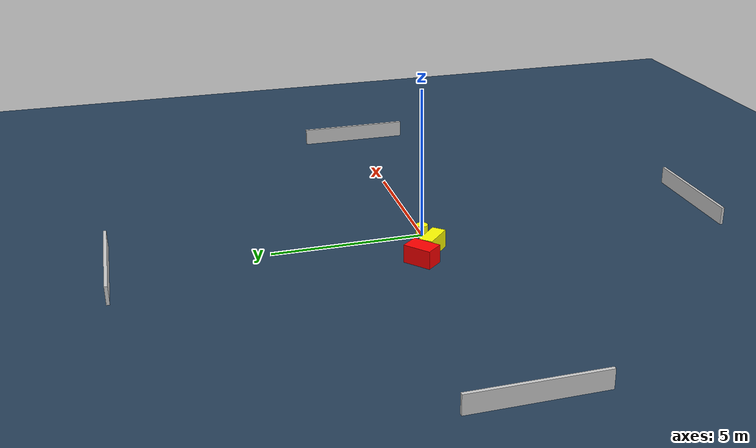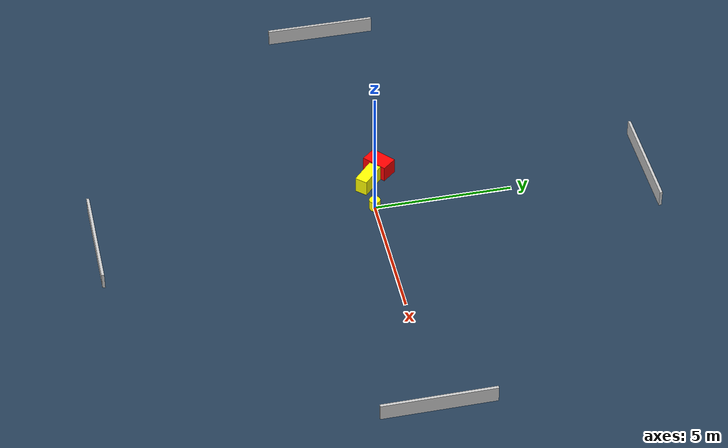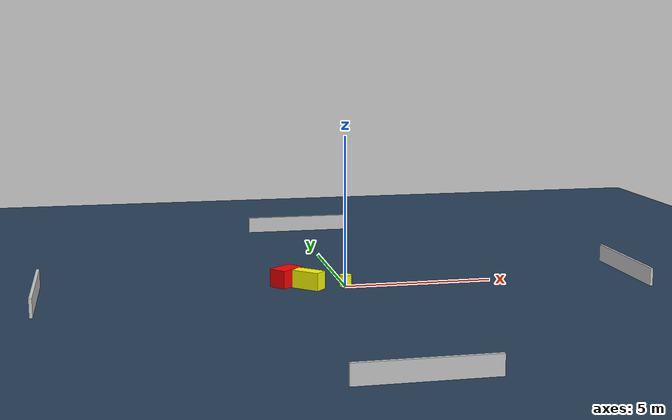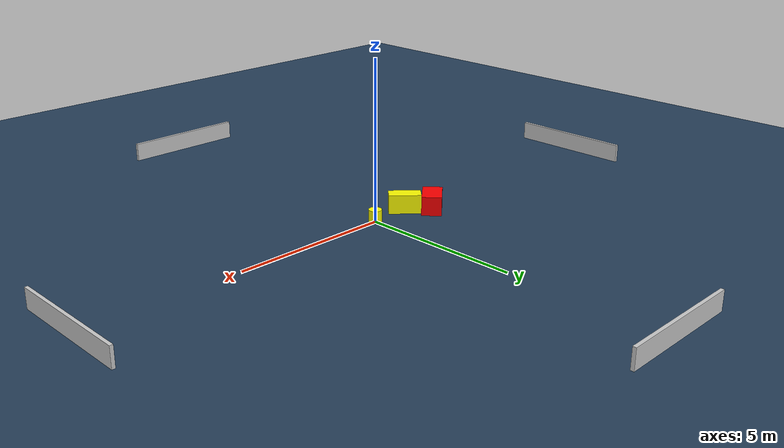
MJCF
<?xml version="1.0" ?>
<mujoco model="generated_environment">
  <option timestep="0.01" integrator="RK4" cone="elliptic"/>
  <default>
    <geom density="1"/>
  </default>
  <asset>
    <texture builtin="gradient" height="3072" name="skybox" rgb1="0.3 0.5 0.7" rgb2="0 0 0" type="skybox" width="512"/>
    <texture builtin="checker" height="300" name="groundplane" rgb1="0.2 0.3 0.4" rgb2="0.1 0.2 0.3" type="2d" width="300"/>
    <material name="groundplane" reflectance="0.2" texrepeat="5 5" texture="groundplane"/>
  </asset>
  <worldbody>
    <light dir="0 0 -1" directional="true" pos="0 0 1.5"/>
    <geom condim="3" friction="0.5 0.005 0.001" material="groundplane" name="floor" pos="0 0 0" size="0 0 0.05" type="plane"/>
    <body name="walls">
      <geom name="wall_1" condim="4" pos="-10.0 0.0 0.3" rgba="0.800000011920929 0.800000011920929 0.800000011920929 1.0" size="0.05 2.0 0.3" type="box"/>
      <geom name="wall_2" condim="4" pos="10.0 0.0 0.3" rgba="0.800000011920929 0.800000011920929 0.800000011920929 1.0" size="0.05 2.0 0.3" type="box"/>
      <geom name="wall_3" condim="4" pos="0.0 -10.0 0.3" rgba="0.800000011920929 0.800000011920929 0.800000011920929 1.0" size="2.0 0.05 0.3" type="box"/>
      <geom name="wall_4" condim="4" pos="0.0 10.0 0.3" rgba="0.800000011920929 0.800000011920929 0.800000011920929 1.0" size="2.0 0.05 0.3" type="box"/>
    </body>
    <body name="robot">
      <joint name="joint_x" type="slide" pos="0 0 0" axis="1 0 0"/>
      <joint name="joint_y" type="slide" pos="0 0 0" axis="0 1 0"/>
      <geom name="robot" type="cylinder" pos="0.0 0.0 0.2" size="0.2 0.2 0.0" mass="5.0" friction="1.0 0.005 0.0001" condim="4" rgba="1.0 1.0 0.0 1.0"/>
    </body>
    <body name="obstacle_1_movable">
      <geom name="obstacle_1_movable" condim="4" pos="-1.2468729032293893 0.021154431530406196 0.3" euler="0 0 317.34875732249924" friction="0.0 0.005 0.001" rgba="1.0 1.0 0.0 1.0" size="0.501697839848984 0.22871950875814992 0.3" type="box" mass="0.1"/>
      <joint type="free"/>
    </body>
    <body name="obstacle_2_static">
      <geom name="obstacle_2_static" condim="4" pos="-1.9004331982920755 0.5624737021221612 0.3" euler="0 0 310.6397481174424" friction="0.0 0.005 0.001" rgba="1.0 0.0 0.0 1.0" size="0.30752441184720225 0.4752707861326974 0.3" type="box"/>
    </body>
  </worldbody>
  <actuator>
    <motor name="actuator_x" joint="joint_x" gear="1" ctrlrange="-1 1"/>
    <motor name="actuator_y" joint="joint_y" gear="1" ctrlrange="-1 1"/>
  </actuator>
</mujoco>
